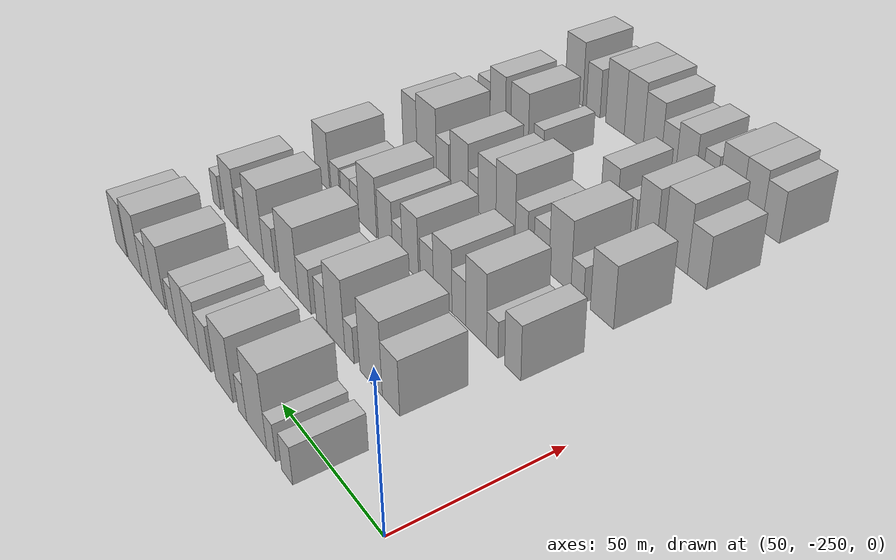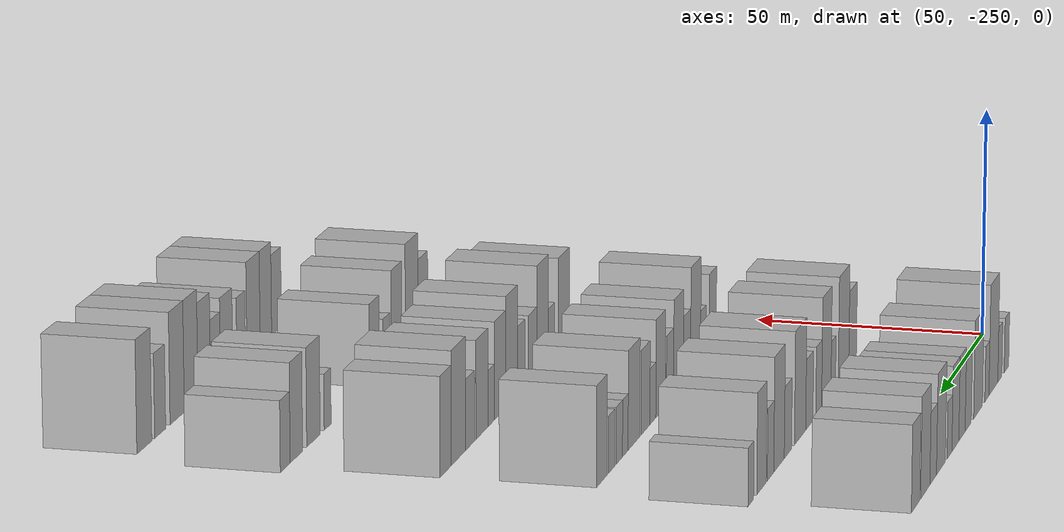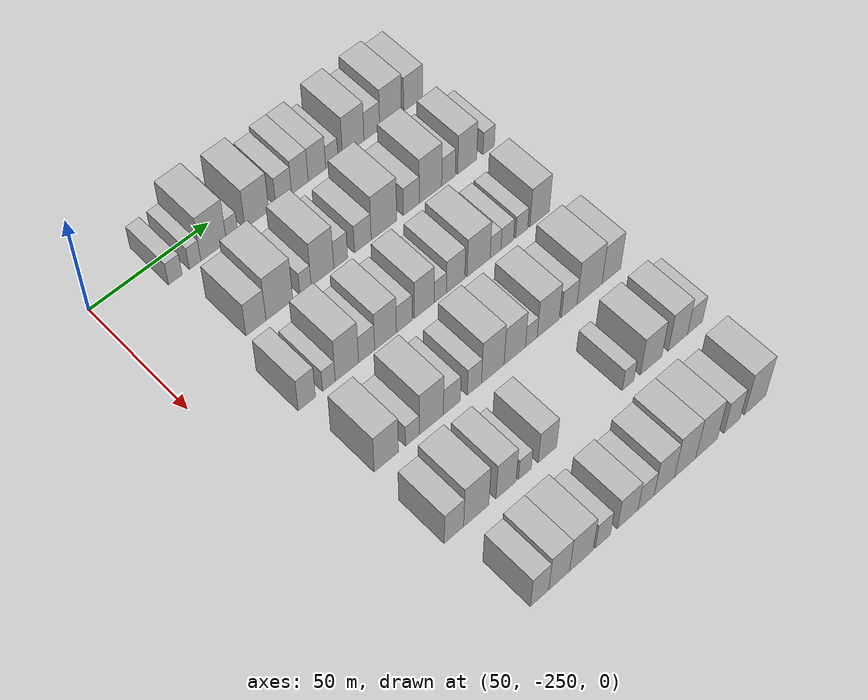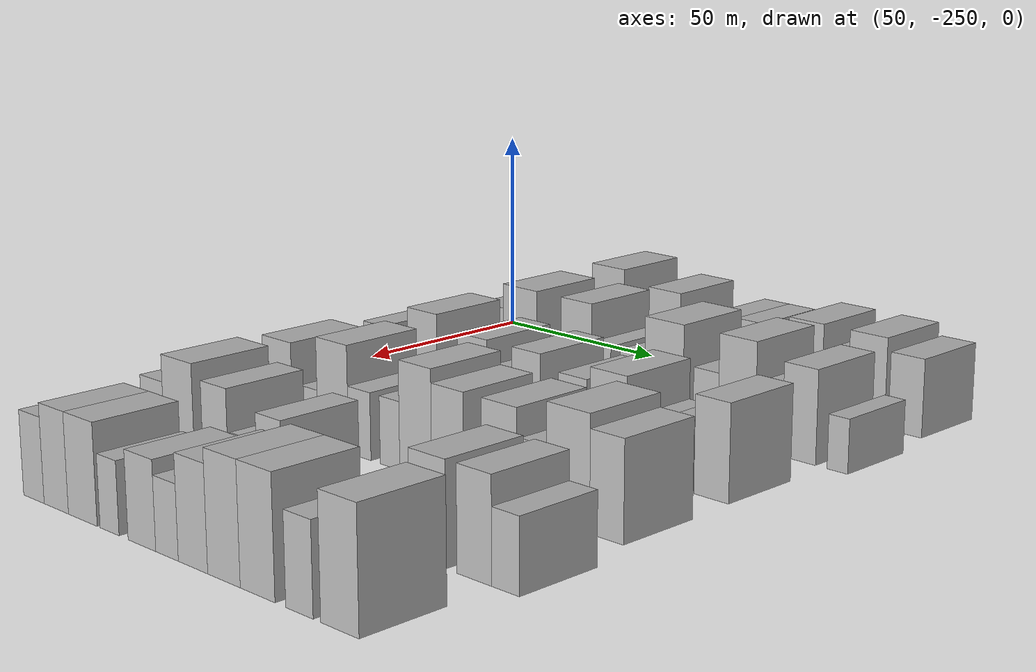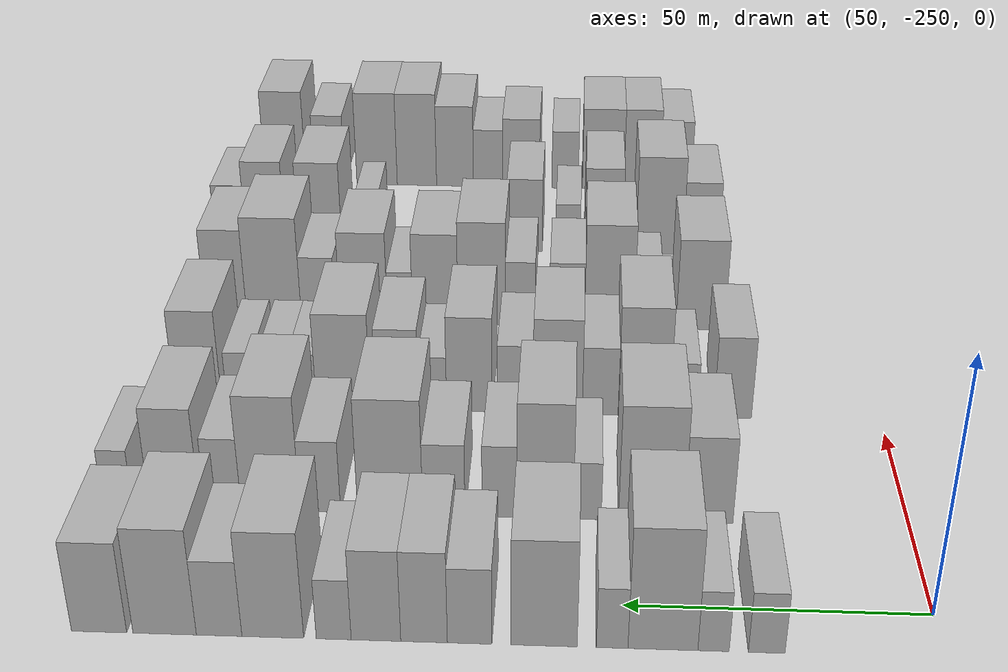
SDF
<sdf version="1.6">
 <world name="default">
  <model name="building_39">
   <static>1</static>
   <pose>50.0000 -222.3284 0 0.000000 0.000000 0.000000</pose>
   <link name="link">
    <pose>0 0 6.00 0 0 0</pose>
    <collision name="collision"><geometry><box><size>20.0000 5.7073 12.0000</size></box></geometry></collision>
    <visual name="visual">
     <cast_shadows>0</cast_shadows>
     <geometry><box><size>20.0000 5.7073 12.0000</size></box></geometry>
     <material>
      <script>
       <uri>model://HANNAS_wall/materials/scripts</uri>
       <uri>model://HANNAS_wall/materials/textures</uri>
       <name>vrc/HANNAS_wall</name>
      </script>
     </material>
    </visual>
   </link>
  </model>
  <model name="building_40">
   <static>1</static>
   <pose>50.0000 -214.0314 0 0.000000 0.000000 0.000000</pose>
   <link name="link">
    <pose>0 0 6.00 0 0 0</pose>
    <collision name="collision"><geometry><box><size>20.0000 4.8867 12.0000</size></box></geometry></collision>
    <visual name="visual">
     <cast_shadows>0</cast_shadows>
     <geometry><box><size>20.0000 4.8867 12.0000</size></box></geometry>
     <material>
      <script>
       <uri>model://HANNAS_wall/materials/scripts</uri>
       <uri>model://HANNAS_wall/materials/textures</uri>
       <name>vrc/HANNAS_wall</name>
      </script>
     </material>
    </visual>
   </link>
  </model>
  <model name="building_41">
   <static>1</static>
   <pose>50.0000 -206.1150 0 0.000000 0.000000 0.000000</pose>
   <link name="link">
    <pose>0 0 12.00 0 0 0</pose>
    <collision name="collision"><geometry><box><size>20.0000 10.9460 24.0000</size></box></geometry></collision>
    <visual name="visual">
     <cast_shadows>0</cast_shadows>
     <geometry><box><size>20.0000 10.9460 24.0000</size></box></geometry>
     <material>
      <script>
       <uri>model://HANNAS_wall/materials/scripts</uri>
       <uri>model://HANNAS_wall/materials/textures</uri>
       <name>vrc/HANNAS_wall</name>
      </script>
     </material>
    </visual>
   </link>
  </model>
  <model name="building_42">
   <static>1</static>
   <pose>50.0000 -198.1602 0 0.000000 0.000000 0.000000</pose>
   <link name="link">
    <pose>0 0 6.00 0 0 0</pose>
    <collision name="collision"><geometry><box><size>20.0000 4.9636 12.0000</size></box></geometry></collision>
    <visual name="visual">
     <cast_shadows>0</cast_shadows>
     <geometry><box><size>20.0000 4.9636 12.0000</size></box></geometry>
     <material>
      <script>
       <uri>model://HANNAS_wall/materials/scripts</uri>
       <uri>model://HANNAS_wall/materials/textures</uri>
       <name>vrc/HANNAS_wall</name>
      </script>
     </material>
    </visual>
   </link>
  </model>
  <model name="building_43">
   <static>1</static>
   <pose>50.0000 -187.4657 0 0.000000 0.000000 0.000000</pose>
   <link name="link">
    <pose>0 0 10.50 0 0 0</pose>
    <collision name="collision"><geometry><box><size>20.0000 10.4254 21.0000</size></box></geometry></collision>
    <visual name="visual">
     <cast_shadows>0</cast_shadows>
     <geometry><box><size>20.0000 10.4254 21.0000</size></box></geometry>
     <material>
      <script>
       <uri>model://HANNAS_wall/materials/scripts</uri>
       <uri>model://HANNAS_wall/materials/textures</uri>
       <name>vrc/HANNAS_wall</name>
      </script>
     </material>
    </visual>
   </link>
  </model>
  <model name="building_44">
   <static>1</static>
   <pose>50.0000 -175.7352 0 0.000000 0.000000 0.000000</pose>
   <link name="link">
    <pose>0 0 7.50 0 0 0</pose>
    <collision name="collision"><geometry><box><size>20.0000 7.0357 15.0000</size></box></geometry></collision>
    <visual name="visual">
     <cast_shadows>0</cast_shadows>
     <geometry><box><size>20.0000 7.0357 15.0000</size></box></geometry>
     <material>
      <script>
       <uri>model://HANNAS_wall/materials/scripts</uri>
       <uri>model://HANNAS_wall/materials/textures</uri>
       <name>vrc/HANNAS_wall</name>
      </script>
     </material>
    </visual>
   </link>
  </model>
  <model name="building_45">
   <static>1</static>
   <pose>50.0000 -168.5302 0 0.000000 0.000000 0.000000</pose>
   <link name="link">
    <pose>0 0 9.00 0 0 0</pose>
    <collision name="collision"><geometry><box><size>20.0000 7.3744 18.0000</size></box></geometry></collision>
    <visual name="visual">
     <cast_shadows>0</cast_shadows>
     <geometry><box><size>20.0000 7.3744 18.0000</size></box></geometry>
     <material>
      <script>
       <uri>model://HANNAS_wall/materials/scripts</uri>
       <uri>model://HANNAS_wall/materials/textures</uri>
       <name>vrc/HANNAS_wall</name>
      </script>
     </material>
    </visual>
   </link>
  </model>
  <model name="building_46">
   <static>1</static>
   <pose>50.0000 -160.9089 0 0.000000 0.000000 0.000000</pose>
   <link name="link">
    <pose>0 0 9.00 0 0 0</pose>
    <collision name="collision"><geometry><box><size>20.0000 7.8682 18.0000</size></box></geometry></collision>
    <visual name="visual">
     <cast_shadows>0</cast_shadows>
     <geometry><box><size>20.0000 7.8682 18.0000</size></box></geometry>
     <material>
      <script>
       <uri>model://HANNAS_wall/materials/scripts</uri>
       <uri>model://HANNAS_wall/materials/textures</uri>
       <name>vrc/HANNAS_wall</name>
      </script>
     </material>
    </visual>
   </link>
  </model>
  <model name="building_47">
   <static>1</static>
   <pose>50.0000 -154.1960 0 0.000000 0.000000 0.000000</pose>
   <link name="link">
    <pose>0 0 6.00 0 0 0</pose>
    <collision name="collision"><geometry><box><size>20.0000 5.5577 12.0000</size></box></geometry></collision>
    <visual name="visual">
     <cast_shadows>0</cast_shadows>
     <geometry><box><size>20.0000 5.5577 12.0000</size></box></geometry>
     <material>
      <script>
       <uri>model://HANNAS_wall/materials/scripts</uri>
       <uri>model://HANNAS_wall/materials/textures</uri>
       <name>vrc/HANNAS_wall</name>
      </script>
     </material>
    </visual>
   </link>
  </model>
  <model name="building_48">
   <static>1</static>
   <pose>50.0000 -144.4930 0 0.000000 0.000000 0.000000</pose>
   <link name="link">
    <pose>0 0 10.50 0 0 0</pose>
    <collision name="collision"><geometry><box><size>20.0000 9.8482 21.0000</size></box></geometry></collision>
    <visual name="visual">
     <cast_shadows>0</cast_shadows>
     <geometry><box><size>20.0000 9.8482 21.0000</size></box></geometry>
     <material>
      <script>
       <uri>model://HANNAS_wall/materials/scripts</uri>
       <uri>model://HANNAS_wall/materials/textures</uri>
       <name>vrc/HANNAS_wall</name>
      </script>
     </material>
    </visual>
   </link>
  </model>
  <model name="building_49">
   <static>1</static>
   <pose>50.0000 -135.9271 0 0.000000 0.000000 0.000000</pose>
   <link name="link">
    <pose>0 0 7.50 0 0 0</pose>
    <collision name="collision"><geometry><box><size>20.0000 7.2836 15.0000</size></box></geometry></collision>
    <visual name="visual">
     <cast_shadows>0</cast_shadows>
     <geometry><box><size>20.0000 7.2836 15.0000</size></box></geometry>
     <material>
      <script>
       <uri>model://HANNAS_wall/materials/scripts</uri>
       <uri>model://HANNAS_wall/materials/textures</uri>
       <name>vrc/HANNAS_wall</name>
      </script>
     </material>
    </visual>
   </link>
  </model>
  <model name="building_50">
   <static>1</static>
   <pose>50.0000 -127.2014 0 0.000000 0.000000 0.000000</pose>
   <link name="link">
    <pose>0 0 10.50 0 0 0</pose>
    <collision name="collision"><geometry><box><size>20.0000 10.1678 21.0000</size></box></geometry></collision>
    <visual name="visual">
     <cast_shadows>0</cast_shadows>
     <geometry><box><size>20.0000 10.1678 21.0000</size></box></geometry>
     <material>
      <script>
       <uri>model://HANNAS_wall/materials/scripts</uri>
       <uri>model://HANNAS_wall/materials/textures</uri>
       <name>vrc/HANNAS_wall</name>
      </script>
     </material>
    </visual>
   </link>
  </model>
  <model name="building_51">
   <static>1</static>
   <pose>50.0000 -116.6768 0 0.000000 0.000000 0.000000</pose>
   <link name="link">
    <pose>0 0 9.00 0 0 0</pose>
    <collision name="collision"><geometry><box><size>20.0000 8.8815 18.0000</size></box></geometry></collision>
    <visual name="visual">
     <cast_shadows>0</cast_shadows>
     <geometry><box><size>20.0000 8.8815 18.0000</size></box></geometry>
     <material>
      <script>
       <uri>model://HANNAS_wall/materials/scripts</uri>
       <uri>model://HANNAS_wall/materials/textures</uri>
       <name>vrc/HANNAS_wall</name>
      </script>
     </material>
    </visual>
   </link>
  </model>
  <model name="building_158">
   <static>1</static>
   <pose>82.0000 -215.2595 0 0.000000 0.000000 0.000000</pose>
   <link name="link">
    <pose>0 0 9.00 0 0 0</pose>
    <collision name="collision"><geometry><box><size>20.0000 8.4421 18.0000</size></box></geometry></collision>
    <visual name="visual">
     <cast_shadows>0</cast_shadows>
     <geometry><box><size>20.0000 8.4421 18.0000</size></box></geometry>
     <material>
      <script>
       <uri>model://HANNAS_wall/materials/scripts</uri>
       <uri>model://HANNAS_wall/materials/textures</uri>
       <name>vrc/HANNAS_wall</name>
      </script>
     </material>
    </visual>
   </link>
  </model>
  <model name="building_159">
   <static>1</static>
   <pose>82.0000 -205.3306 0 0.000000 0.000000 0.000000</pose>
   <link name="link">
    <pose>0 0 12.00 0 0 0</pose>
    <collision name="collision"><geometry><box><size>20.0000 11.4156 24.0000</size></box></geometry></collision>
    <visual name="visual">
     <cast_shadows>0</cast_shadows>
     <geometry><box><size>20.0000 11.4156 24.0000</size></box></geometry>
     <material>
      <script>
       <uri>model://HANNAS_wall/materials/scripts</uri>
       <uri>model://HANNAS_wall/materials/textures</uri>
       <name>vrc/HANNAS_wall</name>
      </script>
     </material>
    </visual>
   </link>
  </model>
  <model name="building_160">
   <static>1</static>
   <pose>82.0000 -194.1957 0 0.000000 0.000000 0.000000</pose>
   <link name="link">
    <pose>0 0 6.00 0 0 0</pose>
    <collision name="collision"><geometry><box><size>20.0000 4.8541 12.0000</size></box></geometry></collision>
    <visual name="visual">
     <cast_shadows>0</cast_shadows>
     <geometry><box><size>20.0000 4.8541 12.0000</size></box></geometry>
     <material>
      <script>
       <uri>model://HANNAS_wall/materials/scripts</uri>
       <uri>model://HANNAS_wall/materials/textures</uri>
       <name>vrc/HANNAS_wall</name>
      </script>
     </material>
    </visual>
   </link>
  </model>
  <model name="building_161">
   <static>1</static>
   <pose>82.0000 -186.8410 0 0.000000 0.000000 0.000000</pose>
   <link name="link">
    <pose>0 0 12.00 0 0 0</pose>
    <collision name="collision"><geometry><box><size>20.0000 9.8552 24.0000</size></box></geometry></collision>
    <visual name="visual">
     <cast_shadows>0</cast_shadows>
     <geometry><box><size>20.0000 9.8552 24.0000</size></box></geometry>
     <material>
      <script>
       <uri>model://HANNAS_wall/materials/scripts</uri>
       <uri>model://HANNAS_wall/materials/textures</uri>
       <name>vrc/HANNAS_wall</name>
      </script>
     </material>
    </visual>
   </link>
  </model>
  <model name="building_162">
   <static>1</static>
   <pose>82.0000 -178.8796 0 0.000000 0.000000 0.000000</pose>
   <link name="link">
    <pose>0 0 7.50 0 0 0</pose>
    <collision name="collision"><geometry><box><size>20.0000 6.0675 15.0000</size></box></geometry></collision>
    <visual name="visual">
     <cast_shadows>0</cast_shadows>
     <geometry><box><size>20.0000 6.0675 15.0000</size></box></geometry>
     <material>
      <script>
       <uri>model://HANNAS_wall/materials/scripts</uri>
       <uri>model://HANNAS_wall/materials/textures</uri>
       <name>vrc/HANNAS_wall</name>
      </script>
     </material>
    </visual>
   </link>
  </model>
  <model name="building_163">
   <static>1</static>
   <pose>82.0000 -169.1452 0 0.000000 0.000000 0.000000</pose>
   <link name="link">
    <pose>0 0 7.50 0 0 0</pose>
    <collision name="collision"><geometry><box><size>20.0000 7.4014 15.0000</size></box></geometry></collision>
    <visual name="visual">
     <cast_shadows>0</cast_shadows>
     <geometry><box><size>20.0000 7.4014 15.0000</size></box></geometry>
     <material>
      <script>
       <uri>model://HANNAS_wall/materials/scripts</uri>
       <uri>model://HANNAS_wall/materials/textures</uri>
       <name>vrc/HANNAS_wall</name>
      </script>
     </material>
    </visual>
   </link>
  </model>
  <model name="building_164">
   <static>1</static>
   <pose>82.0000 -159.7196 0 0.000000 0.000000 0.000000</pose>
   <link name="link">
    <pose>0 0 12.00 0 0 0</pose>
    <collision name="collision"><geometry><box><size>20.0000 11.4497 24.0000</size></box></geometry></collision>
    <visual name="visual">
     <cast_shadows>0</cast_shadows>
     <geometry><box><size>20.0000 11.4497 24.0000</size></box></geometry>
     <material>
      <script>
       <uri>model://HANNAS_wall/materials/scripts</uri>
       <uri>model://HANNAS_wall/materials/textures</uri>
       <name>vrc/HANNAS_wall</name>
      </script>
     </material>
    </visual>
   </link>
  </model>
  <model name="building_165">
   <static>1</static>
   <pose>82.0000 -147.4156 0 0.000000 0.000000 0.000000</pose>
   <link name="link">
    <pose>0 0 7.50 0 0 0</pose>
    <collision name="collision"><geometry><box><size>20.0000 7.1583 15.0000</size></box></geometry></collision>
    <visual name="visual">
     <cast_shadows>0</cast_shadows>
     <geometry><box><size>20.0000 7.1583 15.0000</size></box></geometry>
     <material>
      <script>
       <uri>model://HANNAS_wall/materials/scripts</uri>
       <uri>model://HANNAS_wall/materials/textures</uri>
       <name>vrc/HANNAS_wall</name>
      </script>
     </material>
    </visual>
   </link>
  </model>
  <model name="building_166">
   <static>1</static>
   <pose>82.0000 -138.6499 0 0.000000 0.000000 0.000000</pose>
   <link name="link">
    <pose>0 0 12.00 0 0 0</pose>
    <collision name="collision"><geometry><box><size>20.0000 10.3732 24.0000</size></box></geometry></collision>
    <visual name="visual">
     <cast_shadows>0</cast_shadows>
     <geometry><box><size>20.0000 10.3732 24.0000</size></box></geometry>
     <material>
      <script>
       <uri>model://HANNAS_wall/materials/scripts</uri>
       <uri>model://HANNAS_wall/materials/textures</uri>
       <name>vrc/HANNAS_wall</name>
      </script>
     </material>
    </visual>
   </link>
  </model>
  <model name="building_167">
   <static>1</static>
   <pose>82.0000 -130.2862 0 0.000000 0.000000 0.000000</pose>
   <link name="link">
    <pose>0 0 7.50 0 0 0</pose>
    <collision name="collision"><geometry><box><size>20.0000 6.3541 15.0000</size></box></geometry></collision>
    <visual name="visual">
     <cast_shadows>0</cast_shadows>
     <geometry><box><size>20.0000 6.3541 15.0000</size></box></geometry>
     <material>
      <script>
       <uri>model://HANNAS_wall/materials/scripts</uri>
       <uri>model://HANNAS_wall/materials/textures</uri>
       <name>vrc/HANNAS_wall</name>
      </script>
     </material>
    </visual>
   </link>
  </model>
  <model name="building_168">
   <static>1</static>
   <pose>82.0000 -121.6275 0 0.000000 0.000000 0.000000</pose>
   <link name="link">
    <pose>0 0 10.50 0 0 0</pose>
    <collision name="collision"><geometry><box><size>20.0000 8.9633 21.0000</size></box></geometry></collision>
    <visual name="visual">
     <cast_shadows>0</cast_shadows>
     <geometry><box><size>20.0000 8.9633 21.0000</size></box></geometry>
     <material>
      <script>
       <uri>model://HANNAS_wall/materials/scripts</uri>
       <uri>model://HANNAS_wall/materials/textures</uri>
       <name>vrc/HANNAS_wall</name>
      </script>
     </material>
    </visual>
   </link>
  </model>
  <model name="building_169">
   <static>1</static>
   <pose>82.0000 -111.4924 0 0.000000 0.000000 0.000000</pose>
   <link name="link">
    <pose>0 0 6.00 0 0 0</pose>
    <collision name="collision"><geometry><box><size>20.0000 5.3069 12.0000</size></box></geometry></collision>
    <visual name="visual">
     <cast_shadows>0</cast_shadows>
     <geometry><box><size>20.0000 5.3069 12.0000</size></box></geometry>
     <material>
      <script>
       <uri>model://HANNAS_wall/materials/scripts</uri>
       <uri>model://HANNAS_wall/materials/textures</uri>
       <name>vrc/HANNAS_wall</name>
      </script>
     </material>
    </visual>
   </link>
  </model>
  <model name="building_284">
   <static>1</static>
   <pose>114.0000 -221.8082 0 0.000000 0.000000 0.000000</pose>
   <link name="link">
    <pose>0 0 9.00 0 0 0</pose>
    <collision name="collision"><geometry><box><size>20.0000 7.2133 18.0000</size></box></geometry></collision>
    <visual name="visual">
     <cast_shadows>0</cast_shadows>
     <geometry><box><size>20.0000 7.2133 18.0000</size></box></geometry>
     <material>
      <script>
       <uri>model://HANNAS_wall/materials/scripts</uri>
       <uri>model://HANNAS_wall/materials/textures</uri>
       <name>vrc/HANNAS_wall</name>
      </script>
     </material>
    </visual>
   </link>
  </model>
  <model name="building_285">
   <static>1</static>
   <pose>114.0000 -212.5342 0 0.000000 0.000000 0.000000</pose>
   <link name="link">
    <pose>0 0 6.00 0 0 0</pose>
    <collision name="collision"><geometry><box><size>20.0000 5.3346 12.0000</size></box></geometry></collision>
    <visual name="visual">
     <cast_shadows>0</cast_shadows>
     <geometry><box><size>20.0000 5.3346 12.0000</size></box></geometry>
     <material>
      <script>
       <uri>model://HANNAS_wall/materials/scripts</uri>
       <uri>model://HANNAS_wall/materials/textures</uri>
       <name>vrc/HANNAS_wall</name>
      </script>
     </material>
    </visual>
   </link>
  </model>
  <model name="building_286">
   <static>1</static>
   <pose>114.0000 -204.9363 0 0.000000 0.000000 0.000000</pose>
   <link name="link">
    <pose>0 0 12.00 0 0 0</pose>
    <collision name="collision"><geometry><box><size>20.0000 9.8614 24.0000</size></box></geometry></collision>
    <visual name="visual">
     <cast_shadows>0</cast_shadows>
     <geometry><box><size>20.0000 9.8614 24.0000</size></box></geometry>
     <material>
      <script>
       <uri>model://HANNAS_wall/materials/scripts</uri>
       <uri>model://HANNAS_wall/materials/textures</uri>
       <name>vrc/HANNAS_wall</name>
      </script>
     </material>
    </visual>
   </link>
  </model>
  <model name="building_287">
   <static>1</static>
   <pose>114.0000 -196.5793 0 0.000000 0.000000 0.000000</pose>
   <link name="link">
    <pose>0 0 7.50 0 0 0</pose>
    <collision name="collision"><geometry><box><size>20.0000 6.8526 15.0000</size></box></geometry></collision>
    <visual name="visual">
     <cast_shadows>0</cast_shadows>
     <geometry><box><size>20.0000 6.8526 15.0000</size></box></geometry>
     <material>
      <script>
       <uri>model://HANNAS_wall/materials/scripts</uri>
       <uri>model://HANNAS_wall/materials/textures</uri>
       <name>vrc/HANNAS_wall</name>
      </script>
     </material>
    </visual>
   </link>
  </model>
  <model name="building_288">
   <static>1</static>
   <pose>114.0000 -188.4504 0 0.000000 0.000000 0.000000</pose>
   <link name="link">
    <pose>0 0 10.50 0 0 0</pose>
    <collision name="collision"><geometry><box><size>20.0000 9.4052 21.0000</size></box></geometry></collision>
    <visual name="visual">
     <cast_shadows>0</cast_shadows>
     <geometry><box><size>20.0000 9.4052 21.0000</size></box></geometry>
     <material>
      <script>
       <uri>model://HANNAS_wall/materials/scripts</uri>
       <uri>model://HANNAS_wall/materials/textures</uri>
       <name>vrc/HANNAS_wall</name>
      </script>
     </material>
    </visual>
   </link>
  </model>
  <model name="building_289">
   <static>1</static>
   <pose>114.0000 -180.3162 0 0.000000 0.000000 0.000000</pose>
   <link name="link">
    <pose>0 0 7.50 0 0 0</pose>
    <collision name="collision"><geometry><box><size>20.0000 6.8633 15.0000</size></box></geometry></collision>
    <visual name="visual">
     <cast_shadows>0</cast_shadows>
     <geometry><box><size>20.0000 6.8633 15.0000</size></box></geometry>
     <material>
      <script>
       <uri>model://HANNAS_wall/materials/scripts</uri>
       <uri>model://HANNAS_wall/materials/textures</uri>
       <name>vrc/HANNAS_wall</name>
      </script>
     </material>
    </visual>
   </link>
  </model>
  <model name="building_290">
   <static>1</static>
   <pose>114.0000 -171.5211 0 0.000000 0.000000 0.000000</pose>
   <link name="link">
    <pose>0 0 10.50 0 0 0</pose>
    <collision name="collision"><geometry><box><size>20.0000 8.7269 21.0000</size></box></geometry></collision>
    <visual name="visual">
     <cast_shadows>0</cast_shadows>
     <geometry><box><size>20.0000 8.7269 21.0000</size></box></geometry>
     <material>
      <script>
       <uri>model://HANNAS_wall/materials/scripts</uri>
       <uri>model://HANNAS_wall/materials/textures</uri>
       <name>vrc/HANNAS_wall</name>
      </script>
     </material>
    </visual>
   </link>
  </model>
  <model name="building_291">
   <static>1</static>
   <pose>114.0000 -164.4355 0 0.000000 0.000000 0.000000</pose>
   <link name="link">
    <pose>0 0 6.00 0 0 0</pose>
    <collision name="collision"><geometry><box><size>20.0000 5.4442 12.0000</size></box></geometry></collision>
    <visual name="visual">
     <cast_shadows>0</cast_shadows>
     <geometry><box><size>20.0000 5.4442 12.0000</size></box></geometry>
     <material>
      <script>
       <uri>model://HANNAS_wall/materials/scripts</uri>
       <uri>model://HANNAS_wall/materials/textures</uri>
       <name>vrc/HANNAS_wall</name>
      </script>
     </material>
    </visual>
   </link>
  </model>
  <model name="building_292">
   <static>1</static>
   <pose>114.0000 -157.5940 0 0.000000 0.000000 0.000000</pose>
   <link name="link">
    <pose>0 0 9.00 0 0 0</pose>
    <collision name="collision"><geometry><box><size>20.0000 8.2388 18.0000</size></box></geometry></collision>
    <visual name="visual">
     <cast_shadows>0</cast_shadows>
     <geometry><box><size>20.0000 8.2388 18.0000</size></box></geometry>
     <material>
      <script>
       <uri>model://HANNAS_wall/materials/scripts</uri>
       <uri>model://HANNAS_wall/materials/textures</uri>
       <name>vrc/HANNAS_wall</name>
      </script>
     </material>
    </visual>
   </link>
  </model>
  <model name="building_293">
   <static>1</static>
   <pose>114.0000 -147.2325 0 0.000000 0.000000 0.000000</pose>
   <link name="link">
    <pose>0 0 10.50 0 0 0</pose>
    <collision name="collision"><geometry><box><size>20.0000 10.4841 21.0000</size></box></geometry></collision>
    <visual name="visual">
     <cast_shadows>0</cast_shadows>
     <geometry><box><size>20.0000 10.4841 21.0000</size></box></geometry>
     <material>
      <script>
       <uri>model://HANNAS_wall/materials/scripts</uri>
       <uri>model://HANNAS_wall/materials/textures</uri>
       <name>vrc/HANNAS_wall</name>
      </script>
     </material>
    </visual>
   </link>
  </model>
  <model name="building_294">
   <static>1</static>
   <pose>114.0000 -139.5279 0 0.000000 0.000000 0.000000</pose>
   <link name="link">
    <pose>0 0 6.00 0 0 0</pose>
    <collision name="collision"><geometry><box><size>20.0000 4.9252 12.0000</size></box></geometry></collision>
    <visual name="visual">
     <cast_shadows>0</cast_shadows>
     <geometry><box><size>20.0000 4.9252 12.0000</size></box></geometry>
     <material>
      <script>
       <uri>model://HANNAS_wall/materials/scripts</uri>
       <uri>model://HANNAS_wall/materials/textures</uri>
       <name>vrc/HANNAS_wall</name>
      </script>
     </material>
    </visual>
   </link>
  </model>
  <model name="building_295">
   <static>1</static>
   <pose>114.0000 -134.1653 0 0.000000 0.000000 0.000000</pose>
   <link name="link">
    <pose>0 0 6.00 0 0 0</pose>
    <collision name="collision"><geometry><box><size>20.0000 5.7999 12.0000</size></box></geometry></collision>
    <visual name="visual">
     <cast_shadows>0</cast_shadows>
     <geometry><box><size>20.0000 5.7999 12.0000</size></box></geometry>
     <material>
      <script>
       <uri>model://HANNAS_wall/materials/scripts</uri>
       <uri>model://HANNAS_wall/materials/textures</uri>
       <name>vrc/HANNAS_wall</name>
      </script>
     </material>
    </visual>
   </link>
  </model>
  <model name="building_296">
   <static>1</static>
   <pose>114.0000 -127.4586 0 0.000000 0.000000 0.000000</pose>
   <link name="link">
    <pose>0 0 6.00 0 0 0</pose>
    <collision name="collision"><geometry><box><size>20.0000 5.6134 12.0000</size></box></geometry></collision>
    <visual name="visual">
     <cast_shadows>0</cast_shadows>
     <geometry><box><size>20.0000 5.6134 12.0000</size></box></geometry>
     <material>
      <script>
       <uri>model://HANNAS_wall/materials/scripts</uri>
       <uri>model://HANNAS_wall/materials/textures</uri>
       <name>vrc/HANNAS_wall</name>
      </script>
     </material>
    </visual>
   </link>
  </model>
  <model name="building_297">
   <static>1</static>
   <pose>114.0000 -119.1085 0 0.000000 0.000000 0.000000</pose>
   <link name="link">
    <pose>0 0 10.50 0 0 0</pose>
    <collision name="collision"><geometry><box><size>20.0000 9.0868 21.0000</size></box></geometry></collision>
    <visual name="visual">
     <cast_shadows>0</cast_shadows>
     <geometry><box><size>20.0000 9.0868 21.0000</size></box></geometry>
     <material>
      <script>
       <uri>model://HANNAS_wall/materials/scripts</uri>
       <uri>model://HANNAS_wall/materials/textures</uri>
       <name>vrc/HANNAS_wall</name>
      </script>
     </material>
    </visual>
   </link>
  </model>
  <model name="building_403">
   <static>1</static>
   <pose>146.0000 -217.5632 0 0.000000 0.000000 0.000000</pose>
   <link name="link">
    <pose>0 0 10.50 0 0 0</pose>
    <collision name="collision"><geometry><box><size>20.0000 10.0974 21.0000</size></box></geometry></collision>
    <visual name="visual">
     <cast_shadows>0</cast_shadows>
     <geometry><box><size>20.0000 10.0974 21.0000</size></box></geometry>
     <material>
      <script>
       <uri>model://HANNAS_wall/materials/scripts</uri>
       <uri>model://HANNAS_wall/materials/textures</uri>
       <name>vrc/HANNAS_wall</name>
      </script>
     </material>
    </visual>
   </link>
  </model>
  <model name="building_404">
   <static>1</static>
   <pose>146.0000 -206.6311 0 0.000000 0.000000 0.000000</pose>
   <link name="link">
    <pose>0 0 6.00 0 0 0</pose>
    <collision name="collision"><geometry><box><size>20.0000 5.7667 12.0000</size></box></geometry></collision>
    <visual name="visual">
     <cast_shadows>0</cast_shadows>
     <geometry><box><size>20.0000 5.7667 12.0000</size></box></geometry>
     <material>
      <script>
       <uri>model://HANNAS_wall/materials/scripts</uri>
       <uri>model://HANNAS_wall/materials/textures</uri>
       <name>vrc/HANNAS_wall</name>
      </script>
     </material>
    </visual>
   </link>
  </model>
  <model name="building_405">
   <static>1</static>
   <pose>146.0000 -198.6115 0 0.000000 0.000000 0.000000</pose>
   <link name="link">
    <pose>0 0 12.00 0 0 0</pose>
    <collision name="collision"><geometry><box><size>20.0000 10.2726 24.0000</size></box></geometry></collision>
    <visual name="visual">
     <cast_shadows>0</cast_shadows>
     <geometry><box><size>20.0000 10.2726 24.0000</size></box></geometry>
     <material>
      <script>
       <uri>model://HANNAS_wall/materials/scripts</uri>
       <uri>model://HANNAS_wall/materials/textures</uri>
       <name>vrc/HANNAS_wall</name>
      </script>
     </material>
    </visual>
   </link>
  </model>
  <model name="building_406">
   <static>1</static>
   <pose>146.0000 -189.8200 0 0.000000 0.000000 0.000000</pose>
   <link name="link">
    <pose>0 0 7.50 0 0 0</pose>
    <collision name="collision"><geometry><box><size>20.0000 7.3104 15.0000</size></box></geometry></collision>
    <visual name="visual">
     <cast_shadows>0</cast_shadows>
     <geometry><box><size>20.0000 7.3104 15.0000</size></box></geometry>
     <material>
      <script>
       <uri>model://HANNAS_wall/materials/scripts</uri>
       <uri>model://HANNAS_wall/materials/textures</uri>
       <name>vrc/HANNAS_wall</name>
      </script>
     </material>
    </visual>
   </link>
  </model>
  <model name="building_407">
   <static>1</static>
   <pose>146.0000 -180.0628 0 0.000000 0.000000 0.000000</pose>
   <link name="link">
    <pose>0 0 7.50 0 0 0</pose>
    <collision name="collision"><geometry><box><size>20.0000 6.2042 15.0000</size></box></geometry></collision>
    <visual name="visual">
     <cast_shadows>0</cast_shadows>
     <geometry><box><size>20.0000 6.2042 15.0000</size></box></geometry>
     <material>
      <script>
       <uri>model://HANNAS_wall/materials/scripts</uri>
       <uri>model://HANNAS_wall/materials/textures</uri>
       <name>vrc/HANNAS_wall</name>
      </script>
     </material>
    </visual>
   </link>
  </model>
  <model name="building_408">
   <static>1</static>
   <pose>146.0000 -172.0106 0 0.000000 0.000000 0.000000</pose>
   <link name="link">
    <pose>0 0 12.00 0 0 0</pose>
    <collision name="collision"><geometry><box><size>20.0000 9.9000 24.0000</size></box></geometry></collision>
    <visual name="visual">
     <cast_shadows>0</cast_shadows>
     <geometry><box><size>20.0000 9.9000 24.0000</size></box></geometry>
     <material>
      <script>
       <uri>model://HANNAS_wall/materials/scripts</uri>
       <uri>model://HANNAS_wall/materials/textures</uri>
       <name>vrc/HANNAS_wall</name>
      </script>
     </material>
    </visual>
   </link>
  </model>
  <model name="building_409">
   <static>1</static>
   <pose>146.0000 -162.3052 0 0.000000 0.000000 0.000000</pose>
   <link name="link">
    <pose>0 0 10.50 0 0 0</pose>
    <collision name="collision"><geometry><box><size>20.0000 9.5108 21.0000</size></box></geometry></collision>
    <visual name="visual">
     <cast_shadows>0</cast_shadows>
     <geometry><box><size>20.0000 9.5108 21.0000</size></box></geometry>
     <material>
      <script>
       <uri>model://HANNAS_wall/materials/scripts</uri>
       <uri>model://HANNAS_wall/materials/textures</uri>
       <name>vrc/HANNAS_wall</name>
      </script>
     </material>
    </visual>
   </link>
  </model>
  <model name="building_410">
   <static>1</static>
   <pose>146.0000 -154.9117 0 0.000000 0.000000 0.000000</pose>
   <link name="link">
    <pose>0 0 6.00 0 0 0</pose>
    <collision name="collision"><geometry><box><size>20.0000 5.2762 12.0000</size></box></geometry></collision>
    <visual name="visual">
     <cast_shadows>0</cast_shadows>
     <geometry><box><size>20.0000 5.2762 12.0000</size></box></geometry>
     <material>
      <script>
       <uri>model://HANNAS_wall/materials/scripts</uri>
       <uri>model://HANNAS_wall/materials/textures</uri>
       <name>vrc/HANNAS_wall</name>
      </script>
     </material>
    </visual>
   </link>
  </model>
  <model name="building_411">
   <static>1</static>
   <pose>146.0000 -147.2935 0 0.000000 0.000000 0.000000</pose>
   <link name="link">
    <pose>0 0 10.50 0 0 0</pose>
    <collision name="collision"><geometry><box><size>20.0000 9.9602 21.0000</size></box></geometry></collision>
    <visual name="visual">
     <cast_shadows>0</cast_shadows>
     <geometry><box><size>20.0000 9.9602 21.0000</size></box></geometry>
     <material>
      <script>
       <uri>model://HANNAS_wall/materials/scripts</uri>
       <uri>model://HANNAS_wall/materials/textures</uri>
       <name>vrc/HANNAS_wall</name>
      </script>
     </material>
    </visual>
   </link>
  </model>
  <model name="building_412">
   <static>1</static>
   <pose>146.0000 -137.7056 0 0.000000 0.000000 0.000000</pose>
   <link name="link">
    <pose>0 0 7.50 0 0 0</pose>
    <collision name="collision"><geometry><box><size>20.0000 7.2155 15.0000</size></box></geometry></collision>
    <visual name="visual">
     <cast_shadows>0</cast_shadows>
     <geometry><box><size>20.0000 7.2155 15.0000</size></box></geometry>
     <material>
      <script>
       <uri>model://HANNAS_wall/materials/scripts</uri>
       <uri>model://HANNAS_wall/materials/textures</uri>
       <name>vrc/HANNAS_wall</name>
      </script>
     </material>
    </visual>
   </link>
  </model>
  <model name="building_413">
   <static>1</static>
   <pose>146.0000 -128.3263 0 0.000000 0.000000 0.000000</pose>
   <link name="link">
    <pose>0 0 12.00 0 0 0</pose>
    <collision name="collision"><geometry><box><size>20.0000 11.5433 24.0000</size></box></geometry></collision>
    <visual name="visual">
     <cast_shadows>0</cast_shadows>
     <geometry><box><size>20.0000 11.5433 24.0000</size></box></geometry>
     <material>
      <script>
       <uri>model://HANNAS_wall/materials/scripts</uri>
       <uri>model://HANNAS_wall/materials/textures</uri>
       <name>vrc/HANNAS_wall</name>
      </script>
     </material>
    </visual>
   </link>
  </model>
  <model name="building_414">
   <static>1</static>
   <pose>146.0000 -118.1820 0 0.000000 0.000000 0.000000</pose>
   <link name="link">
    <pose>0 0 10.50 0 0 0</pose>
    <collision name="collision"><geometry><box><size>20.0000 8.7452 21.0000</size></box></geometry></collision>
    <visual name="visual">
     <cast_shadows>0</cast_shadows>
     <geometry><box><size>20.0000 8.7452 21.0000</size></box></geometry>
     <material>
      <script>
       <uri>model://HANNAS_wall/materials/scripts</uri>
       <uri>model://HANNAS_wall/materials/textures</uri>
       <name>vrc/HANNAS_wall</name>
      </script>
     </material>
    </visual>
   </link>
  </model>
  <model name="building_520">
   <static>1</static>
   <pose>178.0000 -219.4998 0 0.000000 0.000000 0.000000</pose>
   <link name="link">
    <pose>0 0 9.00 0 0 0</pose>
    <collision name="collision"><geometry><box><size>20.0000 8.0539 18.0000</size></box></geometry></collision>
    <visual name="visual">
     <cast_shadows>0</cast_shadows>
     <geometry><box><size>20.0000 8.0539 18.0000</size></box></geometry>
     <material>
      <script>
       <uri>model://HANNAS_wall/materials/scripts</uri>
       <uri>model://HANNAS_wall/materials/textures</uri>
       <name>vrc/HANNAS_wall</name>
      </script>
     </material>
    </visual>
   </link>
  </model>
  <model name="building_521">
   <static>1</static>
   <pose>178.0000 -210.1867 0 0.000000 0.000000 0.000000</pose>
   <link name="link">
    <pose>0 0 12.00 0 0 0</pose>
    <collision name="collision"><geometry><box><size>20.0000 10.5723 24.0000</size></box></geometry></collision>
    <visual name="visual">
     <cast_shadows>0</cast_shadows>
     <geometry><box><size>20.0000 10.5723 24.0000</size></box></geometry>
     <material>
      <script>
       <uri>model://HANNAS_wall/materials/scripts</uri>
       <uri>model://HANNAS_wall/materials/textures</uri>
       <name>vrc/HANNAS_wall</name>
      </script>
     </material>
    </visual>
   </link>
  </model>
  <model name="building_522">
   <static>1</static>
   <pose>178.0000 -197.6320 0 0.000000 0.000000 0.000000</pose>
   <link name="link">
    <pose>0 0 10.50 0 0 0</pose>
    <collision name="collision"><geometry><box><size>20.0000 8.5370 21.0000</size></box></geometry></collision>
    <visual name="visual">
     <cast_shadows>0</cast_shadows>
     <geometry><box><size>20.0000 8.5370 21.0000</size></box></geometry>
     <material>
      <script>
       <uri>model://HANNAS_wall/materials/scripts</uri>
       <uri>model://HANNAS_wall/materials/textures</uri>
       <name>vrc/HANNAS_wall</name>
      </script>
     </material>
    </visual>
   </link>
  </model>
  <model name="building_523">
   <static>1</static>
   <pose>178.0000 -189.6013 0 0.000000 0.000000 0.000000</pose>
   <link name="link">
    <pose>0 0 6.00 0 0 0</pose>
    <collision name="collision"><geometry><box><size>20.0000 5.5245 12.0000</size></box></geometry></collision>
    <visual name="visual">
     <cast_shadows>0</cast_shadows>
     <geometry><box><size>20.0000 5.5245 12.0000</size></box></geometry>
     <material>
      <script>
       <uri>model://HANNAS_wall/materials/scripts</uri>
       <uri>model://HANNAS_wall/materials/textures</uri>
       <name>vrc/HANNAS_wall</name>
      </script>
     </material>
    </visual>
   </link>
  </model>
  <model name="building_524">
   <static>1</static>
   <pose>178.0000 -179.8545 0 0.000000 0.000000 0.000000</pose>
   <link name="link">
    <pose>0 0 9.00 0 0 0</pose>
    <collision name="collision"><geometry><box><size>20.0000 7.9691 18.0000</size></box></geometry></collision>
    <visual name="visual">
     <cast_shadows>0</cast_shadows>
     <geometry><box><size>20.0000 7.9691 18.0000</size></box></geometry>
     <material>
      <script>
       <uri>model://HANNAS_wall/materials/scripts</uri>
       <uri>model://HANNAS_wall/materials/textures</uri>
       <name>vrc/HANNAS_wall</name>
      </script>
     </material>
    </visual>
   </link>
  </model>
  <model name="building_525">
   <static>1</static>
   <pose>178.0000 -143.9809 0 0.000000 0.000000 0.000000</pose>
   <link name="link">
    <pose>0 0 6.00 0 0 0</pose>
    <collision name="collision"><geometry><box><size>20.0000 5.2594 12.0000</size></box></geometry></collision>
    <visual name="visual">
     <cast_shadows>0</cast_shadows>
     <geometry><box><size>20.0000 5.2594 12.0000</size></box></geometry>
     <material>
      <script>
       <uri>model://HANNAS_wall/materials/scripts</uri>
       <uri>model://HANNAS_wall/materials/textures</uri>
       <name>vrc/HANNAS_wall</name>
      </script>
     </material>
    </visual>
   </link>
  </model>
  <model name="building_526">
   <static>1</static>
   <pose>178.0000 -133.4163 0 0.000000 0.000000 0.000000</pose>
   <link name="link">
    <pose>0 0 10.50 0 0 0</pose>
    <collision name="collision"><geometry><box><size>20.0000 9.8697 21.0000</size></box></geometry></collision>
    <visual name="visual">
     <cast_shadows>0</cast_shadows>
     <geometry><box><size>20.0000 9.8697 21.0000</size></box></geometry>
     <material>
      <script>
       <uri>model://HANNAS_wall/materials/scripts</uri>
       <uri>model://HANNAS_wall/materials/textures</uri>
       <name>vrc/HANNAS_wall</name>
      </script>
     </material>
    </visual>
   </link>
  </model>
  <model name="building_527">
   <static>1</static>
   <pose>178.0000 -120.9904 0 0.000000 0.000000 0.000000</pose>
   <link name="link">
    <pose>0 0 10.50 0 0 0</pose>
    <collision name="collision"><geometry><box><size>20.0000 8.9822 21.0000</size></box></geometry></collision>
    <visual name="visual">
     <cast_shadows>0</cast_shadows>
     <geometry><box><size>20.0000 8.9822 21.0000</size></box></geometry>
     <material>
      <script>
       <uri>model://HANNAS_wall/materials/scripts</uri>
       <uri>model://HANNAS_wall/materials/textures</uri>
       <name>vrc/HANNAS_wall</name>
      </script>
     </material>
    </visual>
   </link>
  </model>
  <model name="building_528">
   <static>1</static>
   <pose>178.0000 -112.9741 0 0.000000 0.000000 0.000000</pose>
   <link name="link">
    <pose>0 0 7.50 0 0 0</pose>
    <collision name="collision"><geometry><box><size>20.0000 7.0504 15.0000</size></box></geometry></collision>
    <visual name="visual">
     <cast_shadows>0</cast_shadows>
     <geometry><box><size>20.0000 7.0504 15.0000</size></box></geometry>
     <material>
      <script>
       <uri>model://HANNAS_wall/materials/scripts</uri>
       <uri>model://HANNAS_wall/materials/textures</uri>
       <name>vrc/HANNAS_wall</name>
      </script>
     </material>
    </visual>
   </link>
  </model>
  <model name="building_639">
   <static>1</static>
   <pose>210.0000 -215.2970 0 0.000000 0.000000 0.000000</pose>
   <link name="link">
    <pose>0 0 9.00 0 0 0</pose>
    <collision name="collision"><geometry><box><size>20.0000 7.5700 18.0000</size></box></geometry></collision>
    <visual name="visual">
     <cast_shadows>0</cast_shadows>
     <geometry><box><size>20.0000 7.5700 18.0000</size></box></geometry>
     <material>
      <script>
       <uri>model://HANNAS_wall/materials/scripts</uri>
       <uri>model://HANNAS_wall/materials/textures</uri>
       <name>vrc/HANNAS_wall</name>
      </script>
     </material>
    </visual>
   </link>
  </model>
  <model name="building_640">
   <static>1</static>
   <pose>210.0000 -207.1417 0 0.000000 0.000000 0.000000</pose>
   <link name="link">
    <pose>0 0 10.50 0 0 0</pose>
    <collision name="collision"><geometry><box><size>20.0000 8.7407 21.0000</size></box></geometry></collision>
    <visual name="visual">
     <cast_shadows>0</cast_shadows>
     <geometry><box><size>20.0000 8.7407 21.0000</size></box></geometry>
     <material>
      <script>
       <uri>model://HANNAS_wall/materials/scripts</uri>
       <uri>model://HANNAS_wall/materials/textures</uri>
       <name>vrc/HANNAS_wall</name>
      </script>
     </material>
    </visual>
   </link>
  </model>
  <model name="building_641">
   <static>1</static>
   <pose>210.0000 -197.7643 0 0.000000 0.000000 0.000000</pose>
   <link name="link">
    <pose>0 0 10.50 0 0 0</pose>
    <collision name="collision"><geometry><box><size>20.0000 10.0140 21.0000</size></box></geometry></collision>
    <visual name="visual">
     <cast_shadows>0</cast_shadows>
     <geometry><box><size>20.0000 10.0140 21.0000</size></box></geometry>
     <material>
      <script>
       <uri>model://HANNAS_wall/materials/scripts</uri>
       <uri>model://HANNAS_wall/materials/textures</uri>
       <name>vrc/HANNAS_wall</name>
      </script>
     </material>
    </visual>
   </link>
  </model>
  <model name="building_642">
   <static>1</static>
   <pose>210.0000 -188.5497 0 0.000000 0.000000 0.000000</pose>
   <link name="link">
    <pose>0 0 7.50 0 0 0</pose>
    <collision name="collision"><geometry><box><size>20.0000 6.4152 15.0000</size></box></geometry></collision>
    <visual name="visual">
     <cast_shadows>0</cast_shadows>
     <geometry><box><size>20.0000 6.4152 15.0000</size></box></geometry>
     <material>
      <script>
       <uri>model://HANNAS_wall/materials/scripts</uri>
       <uri>model://HANNAS_wall/materials/textures</uri>
       <name>vrc/HANNAS_wall</name>
      </script>
     </material>
    </visual>
   </link>
  </model>
  <model name="building_643">
   <static>1</static>
   <pose>210.0000 -177.8450 0 0.000000 0.000000 0.000000</pose>
   <link name="link">
    <pose>0 0 9.00 0 0 0</pose>
    <collision name="collision"><geometry><box><size>20.0000 8.9943 18.0000</size></box></geometry></collision>
    <visual name="visual">
     <cast_shadows>0</cast_shadows>
     <geometry><box><size>20.0000 8.9943 18.0000</size></box></geometry>
     <material>
      <script>
       <uri>model://HANNAS_wall/materials/scripts</uri>
       <uri>model://HANNAS_wall/materials/textures</uri>
       <name>vrc/HANNAS_wall</name>
      </script>
     </material>
    </visual>
   </link>
  </model>
  <model name="building_644">
   <static>1</static>
   <pose>210.0000 -169.7944 0 0.000000 0.000000 0.000000</pose>
   <link name="link">
    <pose>0 0 7.50 0 0 0</pose>
    <collision name="collision"><geometry><box><size>20.0000 7.1067 15.0000</size></box></geometry></collision>
    <visual name="visual">
     <cast_shadows>0</cast_shadows>
     <geometry><box><size>20.0000 7.1067 15.0000</size></box></geometry>
     <material>
      <script>
       <uri>model://HANNAS_wall/materials/scripts</uri>
       <uri>model://HANNAS_wall/materials/textures</uri>
       <name>vrc/HANNAS_wall</name>
      </script>
     </material>
    </visual>
   </link>
  </model>
  <model name="building_645">
   <static>1</static>
   <pose>210.0000 -161.7461 0 0.000000 0.000000 0.000000</pose>
   <link name="link">
    <pose>0 0 10.50 0 0 0</pose>
    <collision name="collision"><geometry><box><size>20.0000 8.9899 21.0000</size></box></geometry></collision>
    <visual name="visual">
     <cast_shadows>0</cast_shadows>
     <geometry><box><size>20.0000 8.9899 21.0000</size></box></geometry>
     <material>
      <script>
       <uri>model://HANNAS_wall/materials/scripts</uri>
       <uri>model://HANNAS_wall/materials/textures</uri>
       <name>vrc/HANNAS_wall</name>
      </script>
     </material>
    </visual>
   </link>
  </model>
  <model name="building_646">
   <static>1</static>
   <pose>210.0000 -152.4367 0 0.000000 0.000000 0.000000</pose>
   <link name="link">
    <pose>0 0 12.00 0 0 0</pose>
    <collision name="collision"><geometry><box><size>20.0000 9.6290 24.0000</size></box></geometry></collision>
    <visual name="visual">
     <cast_shadows>0</cast_shadows>
     <geometry><box><size>20.0000 9.6290 24.0000</size></box></geometry>
     <material>
      <script>
       <uri>model://HANNAS_wall/materials/scripts</uri>
       <uri>model://HANNAS_wall/materials/textures</uri>
       <name>vrc/HANNAS_wall</name>
      </script>
     </material>
    </visual>
   </link>
  </model>
  <model name="building_647">
   <static>1</static>
   <pose>210.0000 -142.6785 0 0.000000 0.000000 0.000000</pose>
   <link name="link">
    <pose>0 0 12.00 0 0 0</pose>
    <collision name="collision"><geometry><box><size>20.0000 9.8873 24.0000</size></box></geometry></collision>
    <visual name="visual">
     <cast_shadows>0</cast_shadows>
     <geometry><box><size>20.0000 9.8873 24.0000</size></box></geometry>
     <material>
      <script>
       <uri>model://HANNAS_wall/materials/scripts</uri>
       <uri>model://HANNAS_wall/materials/textures</uri>
       <name>vrc/HANNAS_wall</name>
      </script>
     </material>
    </visual>
   </link>
  </model>
  <model name="building_648">
   <static>1</static>
   <pose>210.0000 -131.0080 0 0.000000 0.000000 0.000000</pose>
   <link name="link">
    <pose>0 0 9.00 0 0 0</pose>
    <collision name="collision"><geometry><box><size>20.0000 7.4538 18.0000</size></box></geometry></collision>
    <visual name="visual">
     <cast_shadows>0</cast_shadows>
     <geometry><box><size>20.0000 7.4538 18.0000</size></box></geometry>
     <material>
      <script>
       <uri>model://HANNAS_wall/materials/scripts</uri>
       <uri>model://HANNAS_wall/materials/textures</uri>
       <name>vrc/HANNAS_wall</name>
      </script>
     </material>
    </visual>
   </link>
  </model>
  <model name="building_649">
   <static>1</static>
   <pose>210.0000 -120.2708 0 0.000000 0.000000 0.000000</pose>
   <link name="link">
    <pose>0 0 12.00 0 0 0</pose>
    <collision name="collision"><geometry><box><size>20.0000 10.0204 24.0000</size></box></geometry></collision>
    <visual name="visual">
     <cast_shadows>0</cast_shadows>
     <geometry><box><size>20.0000 10.0204 24.0000</size></box></geometry>
     <material>
      <script>
       <uri>model://HANNAS_wall/materials/scripts</uri>
       <uri>model://HANNAS_wall/materials/textures</uri>
       <name>vrc/HANNAS_wall</name>
      </script>
     </material>
    </visual>
   </link>
  </model>
 </world>
</sdf>
